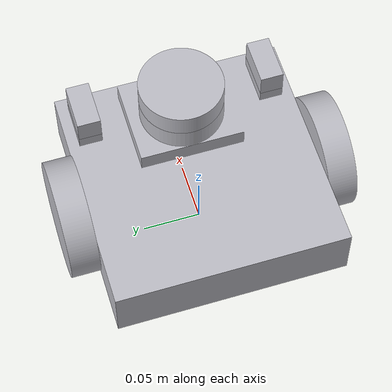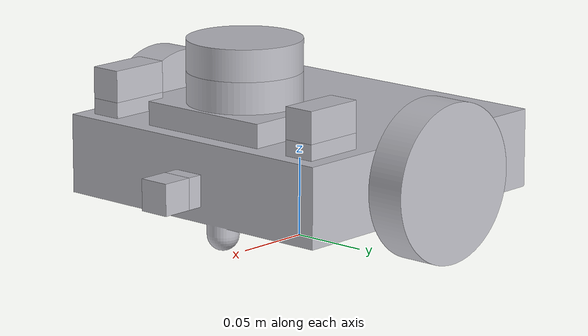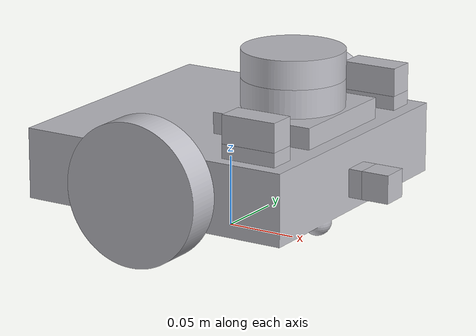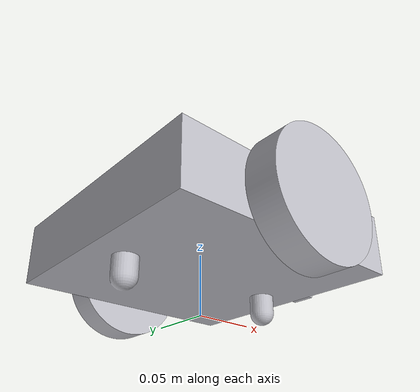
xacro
<?xml version="1.0" ?>
<robot name="myrobot" xmlns:xacro="http://www.ros.org/wiki/xacro">

<xacro:include filename="$(find myrobot_description)/urdf/materials.xacro" />
<xacro:include filename="$(find myrobot_description)/urdf/myrobot.trans" />
<xacro:include filename="$(find myrobot_description)/urdf/myrobot.gazebo" />
<link name="base_link">
  <inertial>
    <origin xyz="0.004875894859860826 3.470672019936501e-05 0.05830848045551468" rpy="0 0 0"/>
    <mass value="2.3492712687314"/>
    <inertia ixx="0.008062" iyy="0.008576" izz="0.015068" ixy="-4e-06" iyz="-2e-06" ixz="-0.00039"/>
  </inertial>
  <visual>
    <origin xyz="0 0 0" rpy="0 0 0"/>
    <geometry>
      <mesh filename="package://myrobot_description/meshes/base_link.stl" scale="0.001 0.001 0.001"/>
    </geometry>
    <material name="silver"/>
  </visual>
  <collision>
    <origin xyz="0 0 0" rpy="0 0 0"/>
    <geometry>
      <mesh filename="package://myrobot_description/meshes/base_link.stl" scale="0.001 0.001 0.001"/>
    </geometry>
  </collision>
</link>

<link name="right_wheel_1">
  <inertial>
    <origin xyz="-1.3739009929736312e-17 -0.012499999999999997 0.0" rpy="0 0 0"/>
    <mass value="0.1826050729899067"/>
    <inertia ixx="0.000124" iyy="0.000228" izz="0.000124" ixy="0.0" iyz="0.0" ixz="-0.0"/>
  </inertial>
  <visual>
    <origin xyz="-0.0 0.1 -0.055" rpy="0 0 0"/>
    <geometry>
      <mesh filename="package://myrobot_description/meshes/right_wheel_1.stl" scale="0.001 0.001 0.001"/>
    </geometry>
    <material name="silver"/>
  </visual>
  <collision>
    <origin xyz="-0.0 0.1 -0.055" rpy="0 0 0"/>
    <geometry>
      <mesh filename="package://myrobot_description/meshes/right_wheel_1.stl" scale="0.001 0.001 0.001"/>
    </geometry>
  </collision>
</link>

<link name="left_wheel_1">
  <inertial>
    <origin xyz="-1.0061396160665481e-17 0.012499999999999997 0.0" rpy="0 0 0"/>
    <mass value="0.1826050729899067"/>
    <inertia ixx="0.000124" iyy="0.000228" izz="0.000124" ixy="0.0" iyz="-0.0" ixz="-0.0"/>
  </inertial>
  <visual>
    <origin xyz="-0.0 -0.1 -0.055" rpy="0 0 0"/>
    <geometry>
      <mesh filename="package://myrobot_description/meshes/left_wheel_1.stl" scale="0.001 0.001 0.001"/>
    </geometry>
    <material name="silver"/>
  </visual>
  <collision>
    <origin xyz="-0.0 -0.1 -0.055" rpy="0 0 0"/>
    <geometry>
      <mesh filename="package://myrobot_description/meshes/left_wheel_1.stl" scale="0.001 0.001 0.001"/>
    </geometry>
  </collision>
</link>

<link name="lidar_1">
  <inertial>
    <origin xyz="0.0 6.980641276188792e-18 0.009999999999999995" rpy="0 0 0"/>
    <mass value="0.639226140411222"/>
    <inertia ixx="0.000228" iyy="0.000228" izz="0.000414" ixy="0.0" iyz="0.0" ixz="-0.0"/>
  </inertial>
  <visual>
    <origin xyz="-0.05 -0.0 -0.115" rpy="0 0 0"/>
    <geometry>
      <mesh filename="package://myrobot_description/meshes/lidar_1.stl" scale="0.001 0.001 0.001"/>
    </geometry>
    <material name="silver"/>
  </visual>
  <collision>
    <origin xyz="-0.05 -0.0 -0.115" rpy="0 0 0"/>
    <geometry>
      <mesh filename="package://myrobot_description/meshes/lidar_1.stl" scale="0.001 0.001 0.001"/>
    </geometry>
  </collision>
</link>

<link name="right_ultrasonic_1">
  <inertial>
    <origin xyz="0.0 -1.6505022612522957e-07 0.010000000000000009" rpy="0 0 0"/>
    <mass value="0.12560000000000004"/>
    <inertia ixx="8e-06" iyy="2.1e-05" izz="2.1e-05" ixy="-0.0" iyz="-0.0" ixz="0.0"/>
  </inertial>
  <visual>
    <origin xyz="-0.07 0.080468 -0.09" rpy="0 0 0"/>
    <geometry>
      <mesh filename="package://myrobot_description/meshes/right_ultrasonic_1.stl" scale="0.001 0.001 0.001"/>
    </geometry>
    <material name="silver"/>
  </visual>Description: simulates IMU sensor. Measurements are computed by the ROS plugin, not by Gazebo. See usage snippet sample below for implementation.

<robot>
:
  <gazebo>
    <plugin name="imu_plugin" filename="libgazebo_ros_imu.so">
      <alwaysOn>true</alwaysOn>
      <bodyName>base_footprint</bodyName>
      <topicName>imu</topicName>
      <serviceName>imu_service</serviceName>
      <gaussianNoise>0.0</gaussianNoise>
      <updateRate>20.0</updateRate>
    </plugin>
  </gazebo>
</robot>

IMU sensor (GazeboRosImuSensor)

Description: simulates an Inertial Motion Unit sensor, the main differences from IMU (GazeboRosIMU) are: - inheritance from SensorPlugin instead of ModelPlugin, - measurements are given by gazebo ImuSensor instead of being computed by the ros plugin, - gravity is included in inertial measurements. - set initialOrientationAsReference to false to comply with REP 145.

  <gazebo reference="imu_link">
    <gravity>true</gravity>
    <sensor name="imu_sensor" type="imu">
      <always_on>true</always_on>
      <update_rate>100</update_rate>
      <visualize>true</visualize>
      <topic>__default_topic__</topic>
      <plugin filename="libgazebo_ros_imu_sensor.so" name="imu_plugin">
        <topicName>imu</topicName>
        <bodyName>imu_link</bodyName>
        <updateRateHZ>10.0</updateRateHZ>
        <gaussianNoise>0.0</gaussianNoise>
        <xyzOffset>0 0 0</xyzOffset>
        <rpyOffset>0 0 0</rpyOffset>
        <frameName>imu_link</frameName>
        <initialOrientationAsReference>false</initialOrientationAsReference>
      </plugin>
      <pose>0 0 0 0 0 0</pose>
    </sensor>
  </gazebo>
  <collision>
    <origin xyz="-0.07 0.080468 -0.09" rpy="0 0 0"/>
    <geometry>
      <mesh filename="package://myrobot_description/meshes/right_ultrasonic_1.stl" scale="0.001 0.001 0.001"/>
    </geometry>
  </collision>
</link>

<link name="left_ultrasonic_1">
  <inertial>
    <origin xyz="0.0 0.0 0.010000000000000009" rpy="0 0 0"/>
    <mass value="0.1256"/>
    <inertia ixx="8e-06" iyy="2.1e-05" izz="2.1e-05" ixy="0.0" iyz="0.0" ixz="0.0"/>
  </inertial>
  <visual>
    <origin xyz="-0.07 -0.08 -0.09" rpy="0 0 0"/>
    <geometry>
      <mesh filename="package://myrobot_description/meshes/left_ultrasonic_1.stl" scale="0.001 0.001 0.001"/>
    </geometry>
    <material name="silver"/>
  </visual>
  <collision>
    <origin xyz="-0.07 -0.08 -0.09" rpy="0 0 0"/>
    <geometry>
      <mesh filename="package://myrobot_description/meshes/left_ultrasonic_1.stl" scale="0.001 0.001 0.001"/>
    </geometry>
  </collision>
</link>

<link name="camera_1">
  <inertial>
    <origin xyz="0.009999999999999995 -4.440892098500626e-18 0.0" rpy="0 0 0"/>
    <mass value="0.0628"/>
    <inertia ixx="4e-06" iyy="4e-06" izz="4e-06" ixy="0.0" iyz="0.0" ixz="0.0"/>
  </inertial>
  <visual>
    <origin xyz="-0.11 0.0 -0.05" rpy="0 0 0"/>
    <geometry>
      <mesh filename="package://myrobot_description/meshes/camera_1.stl" scale="0.001 0.001 0.001"/>
    </geometry>
    <material name="silver"/>
  </visual>
  <collision>
    <origin xyz="-0.11 0.0 -0.05" rpy="0 0 0"/>
    <geometry>
      <mesh filename="package://myrobot_description/meshes/camera_1.stl" scale="0.001 0.001 0.001"/>
    </geometry>
  </collision>
</link>

<joint name="Revolute 1" type="continuous">
  <origin xyz="0.0 -0.1 0.055" rpy="0 0 0"/>
  <parent link="base_link"/>
  <child link="right_wheel_1"/>
  <axis xyz="0.0 1.0 0.0"/>
</joint>

<joint name="Revolute 2" type="continuous">
  <origin xyz="0.0 0.1 0.055" rpy="0 0 0"/>
  <parent link="base_link"/>
  <child link="left_wheel_1"/>
  <axis xyz="0.0 1.0 0.0"/>
</joint>

<joint name="Rigid 3" type="fixed">
  <origin xyz="0.05 0.0 0.115" rpy="0 0 0"/>
  <parent link="base_link"/>
  <child link="lidar_1"/>
</joint>

<joint name="Rigid 4" type="fixed">
  <origin xyz="0.07 -0.080468 0.09" rpy="0 0 0"/>
  <parent link="base_link"/>
  <child link="right_ultrasonic_1"/>
</joint>

<joint name="Rigid 5" type="fixed">
  <origin xyz="0.07 0.08 0.09" rpy="0 0 0"/>
  <parent link="base_link"/>
  <child link="left_ultrasonic_1"/>
</joint>

<joint name="Rigid 6" type="fixed">
  <origin xyz="0.11 0.0 0.05" rpy="0 0 0"/>
  <parent link="base_link"/>
  <child link="camera_1"/>
</joint>

</robot>

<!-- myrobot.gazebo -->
<robot name="myrobot" xmlns:xacro="http://www.ros.org/wiki/xacro" >

<xacro:property name="body_color" value="Gazebo/Silver" />

<gazebo>
  <plugin name="control" filename="libgazebo_ros_control.so"/>
</gazebo>
<gazebo reference="base_link">
  <material>${body_color}</material>
  <mu1>0.1</mu1>
  <mu2>0.1</mu2>
  <selfCollide>true</selfCollide>
  <gravity>true</gravity>
</gazebo>

<gazebo reference="right_wheel_1">
  <material>${body_color}</material>
  <mu1>1500</mu1>
  <mu2>1500</mu2>
  <selfCollide>true</selfCollide>
</gazebo>

<gazebo reference="left_wheel_1">
  <material>${body_color}</material>
  <mu1>1500</mu1>
  <mu2>1500</mu2>
  <selfCollide>true</selfCollide>
</gazebo>

<gazebo reference="lidar_1">
  <material>${body_color}</material>
  <mu1>0.2</mu1>
  <mu2>0.2</mu2>
  <selfCollide>true</selfCollide>
</gazebo>

<gazebo reference="camera_1">
  <material>${body_color}</material>
  <mu1>0.2</mu1>
  <mu2>0.2</mu2>
  <selfCollide>true</selfCollide>
</gazebo>

<!-- Differential Drive Plugin -->
<gazebo>
  <plugin name="differential_drive_controller" filename="libgazebo_ros_diff_drive.so">

    <!-- Plugin update rate in Hz -->
    <updateRate>100</updateRate>

    <!-- Name of left joint, defaults to `left_joint` -->
    <leftJoint>Revolute 2</leftJoint>

    <!-- Name of right joint, defaults to `right_joint` -->
    <rightJoint>Revolute 1</rightJoint>

    <!-- The distance from the center of one wheel to the other, in meters, defaults to 0.34 m -->
    <wheelSeparation>0.2</wheelSeparation>

    <!-- Diameter of the wheels, in meters, defaults to 0.15 m -->
    <wheelDiameter>0.1</wheelDiameter>

    <!-- Wheel acceleration, in rad/s^2, defaults to 0.0 rad/s^2 -->
    <wheelAcceleration>1.0</wheelAcceleration>

    <!-- Maximum torque which the wheels can produce, in Nm, defaults to 5 Nm -->
    <wheelTorque>50</wheelTorque>

    <!-- Topic to receive geometry_msgs/Twist message commands, defaults to `cmd_vel` -->
    <commandTopic>cmd_vel</commandTopic>

    <!-- Topic to publish nav_msgs/Odometry messages, defaults to `odom` -->
    <odometryTopic>odom</odometryTopic>

    <!-- Odometry frame, defaults to `odom` -->
    <odometryFrame>odom</odometryFrame>

    <!-- Robot frame to calculate odometry from, defaults to `base_footprint` -->
    <robotBaseFrame>base_link</robotBaseFrame>

    <!-- Odometry source, 0 for ENCODER, 1 for WORLD, defaults to WORLD -->
    <odometrySource>1</odometrySource>

    <!-- Set to true to publish transforms for the wheel links, defaults to false -->
    <publishWheelTF>true</publishWheelTF>

    <!-- Set to true to publish transforms for the odometry, defaults to true -->
    <publishOdom>true</publishOdom>

    <!-- Set to true to publish sensor_msgs/JointState on /joint_states for the wheel joints, defaults to false -->
    <publishWheelJointState>true</publishWheelJointState>

    <!-- Set to true to swap right and left wheels, defaults to true -->
    <legacyMode>false</legacyMode>
  </plugin>
</gazebo>

<!-- Hokuyo Lidar -->
<gazebo reference="lidar_1">
  <sensor type="ray" name="head_hokuyo_sensor">
    <pose>0 0 0 0 0 0</pose>
    <visualize>true</visualize>
    <update_rate>40</update_rate>
    <ray>
      <scan>
        <horizontal>
          <samples>720</samples>
          <resolution>1</resolution>
          <min_angle>-1.570796</min_angle>
          <max_angle>1.570796</max_angle>
        </horizontal>
      </scan>
      <range>
        <min>0.10</min>
        <max>30.0</max>
        <resolution>0.01</resolution>
      </range>
      <noise>
        <type>gaussian</type>
        <mean>0.0</mean>
        <stddev>0.01</stddev>
      </noise>
    </ray>
    <plugin name="gazebo_ros_head_hokuyo_controller" filename="libgazebo_ros_laser.so">
      <topicName>scan</topicName>
      <frameName>lidar_1</frameName>
    </plugin>
  </sensor>
</gazebo>

<!-- Camera -->
<gazebo reference="camera_1">
  <sensor type="camera" name="camera1">
    <update_rate>30.0</update_rate>
    <camera name="head">
      <horizontal_fov>1.3962634</horizontal_fov>
      <image>
        <width>800</width>
        <height>800</height>
        <format>R8G8B8</format>
      </image>
      <clip>
        <near>0.02</near>
        <far>300</far>
      </clip>
    </camera>
    <plugin name="camera_controller" filename="libgazebo_ros_camera.so">
      <robotNamespace>myrobot</robotNamespace>
      <alwaysOn>true</alwaysOn>
      <updateRate>0.0</updateRate>
      <cameraName>camera</cameraName>
      <imageTopicName>rgb/image_raw</imageTopicName>
      <cameraInfoTopicName>rgb/camera_info</cameraInfoTopicName>
      <frameName>camera_1</frameName>
      <hackBaseline>0.07</hackBaseline>
      <distortionK1>0.0</distortionK1>
      <distortionK2>0.0</distortionK2>
      <distortionK3>0.0</distortionK3>
      <distortionT1>0.0</distortionT1>
      <distortionT2>0.0</distortionT2>
    </plugin>
  </sensor>
</gazebo>

<!-- IMU 1 (Replacing right_ultrasonic_1) -->
<gazebo reference="right_ultrasonic_1">
  <gravity>true</gravity>
  <sensor name="imu_sensor_1" type="imu">
    <always_on>true</always_on>
    <update_rate>100</update_rate>
    <visualize>true</visualize>
    <topic>__default_topic__</topic>
    <plugin filename="libgazebo_ros_imu_sensor.so" name="imu_plugin_1">
      <topicName>imu_1</topicName>
      <bodyName>right_ultrasonic_1</bodyName>
      <updateRateHZ>10.0</updateRateHZ>
      <gaussianNoise>0.0</gaussianNoise>
      <xyzOffset>0 0 0</xyzOffset>
      <rpyOffset>0 0 0</rpyOffset>
      <frameName>right_ultrasonic_1</frameName>
      <initialOrientationAsReference>false</initialOrientationAsReference>
    </plugin>
    <pose>0 0 0 0 0 0</pose>
  </sensor>
</gazebo>

</robot>
